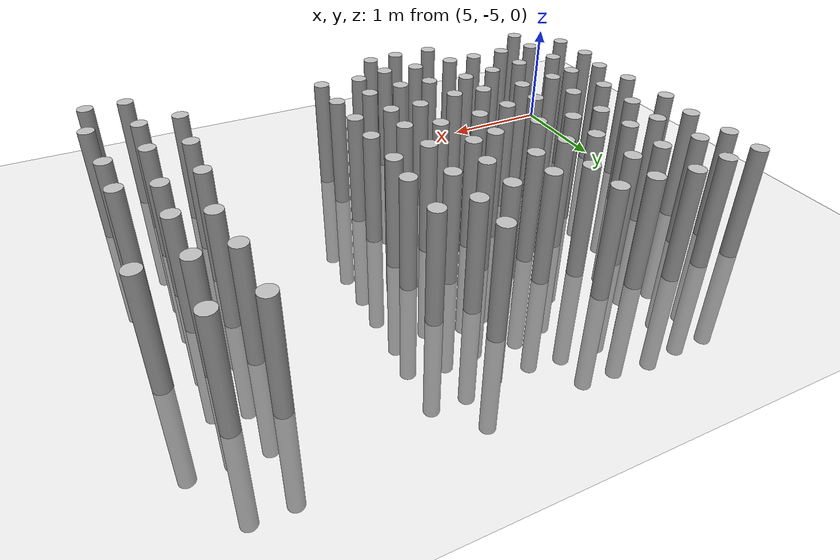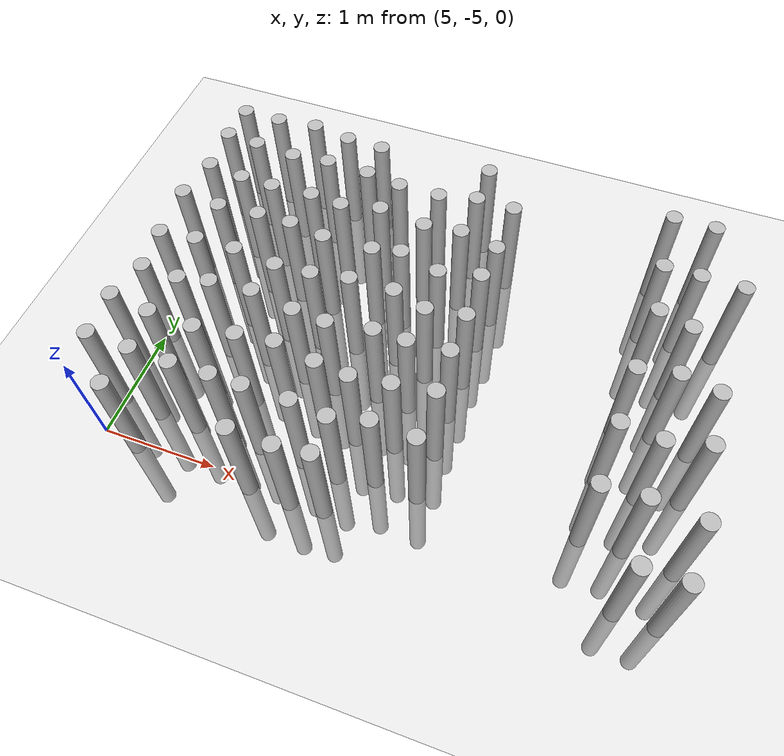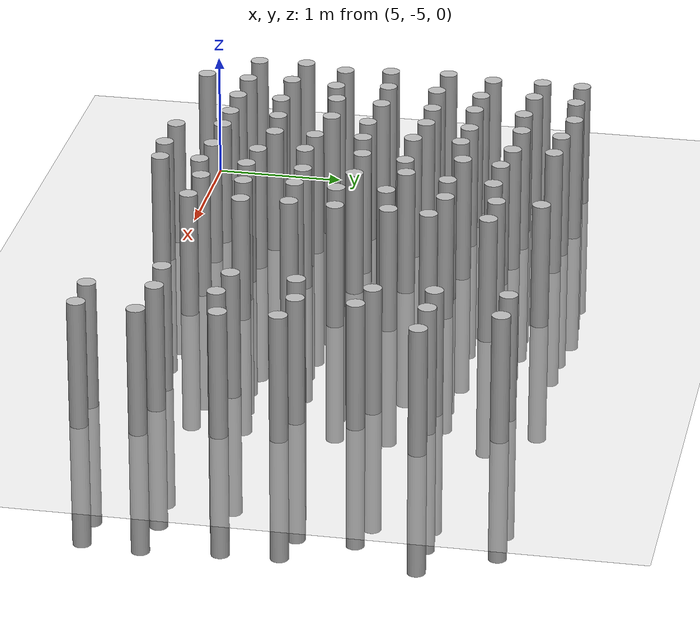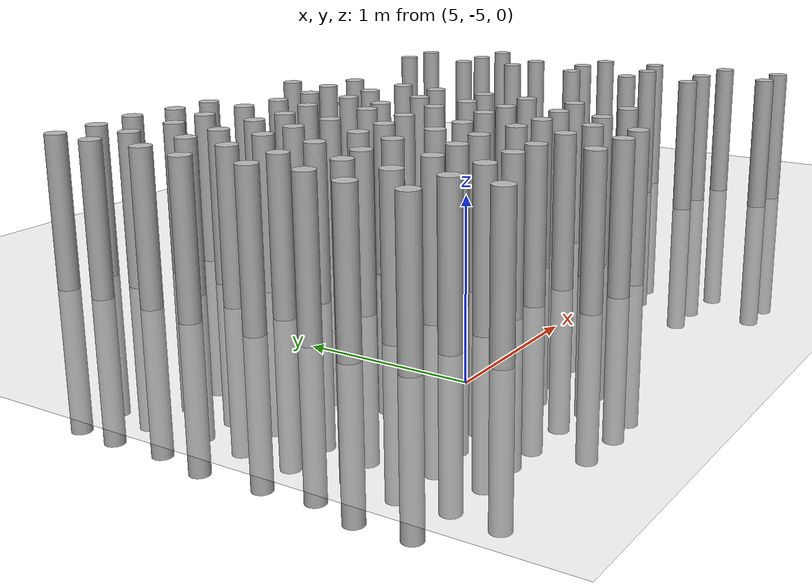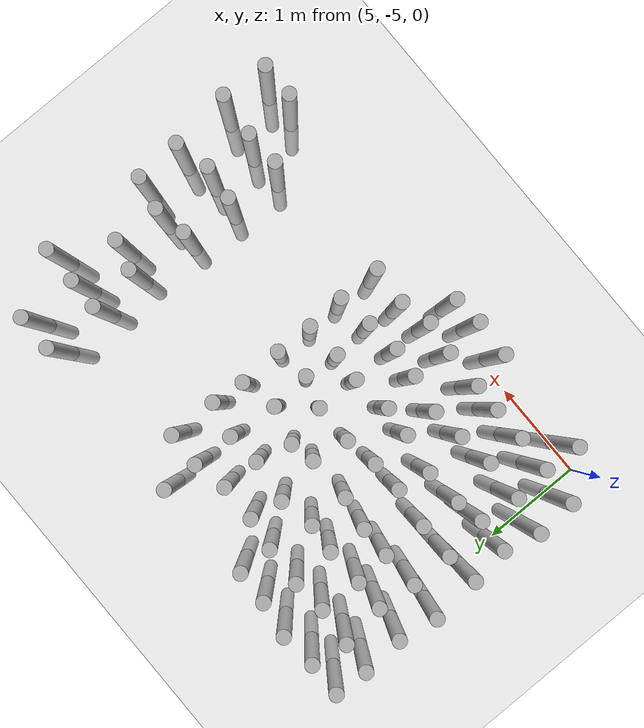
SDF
<sdf version="1.7">
 <world name="farmland_world">
  <model name="ground_plane">
   <static>1</static>
   <link name="link">
    <collision name="collision">
     <geometry><plane><normal>0 0 1</normal><size>40.0 40.0</size></plane></geometry>
     <surface><friction><ode><mu>100</mu><mu2>50</mu2></ode></friction></surface>
    </collision>
    <visual name="visual">
     <cast_shadows>0</cast_shadows>
     <geometry><plane><normal>0 0 1</normal><size>40.0 40.0</size></plane></geometry>
     <material>
      <script><uri>file://media/materials/scripts/gazebo.material</uri><name>Gazebo/Grey</name></script>
     </material>
    </visual>
   </link>
  </model>
  <model name="tree_3_0">
   <static>1</static>
   <link name="link">
    <collision name="collision">
     <geometry><cylinder><radius>0.07</radius><length>2.0</length></cylinder></geometry>
     <surface><friction><ode><mu>100</mu><mu2>50</mu2></ode></friction></surface>
    </collision>
    <visual name="visual">
     <geometry><cylinder><radius>0.07</radius><length>2.0</length></cylinder></geometry>
    </visual>
   </link>
   <pose>5.02385146459947 -2.01520380346252 0 0 0 0</pose>
  </model>
  <model name="tree_3_1">
   <static>1</static>
   <link name="link">
    <collision name="collision">
     <geometry><cylinder><radius>0.07</radius><length>2.0</length></cylinder></geometry>
     <surface><friction><ode><mu>100</mu><mu2>50</mu2></ode></friction></surface>
    </collision>
    <visual name="visual">
     <geometry><cylinder><radius>0.07</radius><length>2.0</length></cylinder></geometry>
    </visual>
   </link>
   <pose>5.006675148250511 -2.3384768606387527 0 0 0 0</pose>
  </model>
  <model name="tree_3_2">
   <static>1</static>
   <link name="link">
    <collision name="collision">
     <geometry><cylinder><radius>0.07</radius><length>2.0</length></cylinder></geometry>
     <surface><friction><ode><mu>100</mu><mu2>50</mu2></ode></friction></surface>
    </collision>
    <visual name="visual">
     <geometry><cylinder><radius>0.07</radius><length>2.0</length></cylinder></geometry>
    </visual>
   </link>
   <pose>5.028471975977635 -2.7375364424873183 0 0 0 0</pose>
  </model>
  <model name="tree_3_3">
   <static>1</static>
   <link name="link">
    <collision name="collision">
     <geometry><cylinder><radius>0.07</radius><length>2.0</length></cylinder></geometry>
     <surface><friction><ode><mu>100</mu><mu2>50</mu2></ode></friction></surface>
    </collision>
    <visual name="visual">
     <geometry><cylinder><radius>0.07</radius><length>2.0</length></cylinder></geometry>
    </visual>
   </link>
   <pose>4.964994302810389 -3.1116032813736223 0 0 0 0</pose>
  </model>
  <model name="tree_3_4">
   <static>1</static>
   <link name="link">
    <collision name="collision">
     <geometry><cylinder><radius>0.07</radius><length>2.0</length></cylinder></geometry>
     <surface><friction><ode><mu>100</mu><mu2>50</mu2></ode></friction></surface>
    </collision>
    <visual name="visual">
     <geometry><cylinder><radius>0.07</radius><length>2.0</length></cylinder></geometry>
    </visual>
   </link>
   <pose>4.9990074492786745 -3.5785740689551413 0 0 0 0</pose>
  </model>
  <model name="tree_3_5">
   <static>1</static>
   <link name="link">
    <collision name="collision">
     <geometry><cylinder><radius>0.07</radius><length>2.0</length></cylinder></geometry>
     <surface><friction><ode><mu>100</mu><mu2>50</mu2></ode></friction></surface>
    </collision>
    <visual name="visual">
     <geometry><cylinder><radius>0.07</radius><length>2.0</length></cylinder></geometry>
    </visual>
   </link>
   <pose>5.043069390708024 -3.945555380272648 0 0 0 0</pose>
  </model>
  <model name="tree_3_6">
   <static>1</static>
   <link name="link">
    <collision name="collision">
     <geometry><cylinder><radius>0.07</radius><length>2.0</length></cylinder></geometry>
     <surface><friction><ode><mu>100</mu><mu2>50</mu2></ode></friction></surface>
    </collision>
    <visual name="visual">
     <geometry><cylinder><radius>0.07</radius><length>2.0</length></cylinder></geometry>
    </visual>
   </link>
   <pose>4.9544429138274015 -4.286026819714782 0 0 0 0</pose>
  </model>
  <model name="tree_3_7">
   <static>1</static>
   <link name="link">
    <collision name="collision">
     <geometry><cylinder><radius>0.07</radius><length>2.0</length></cylinder></geometry>
     <surface><friction><ode><mu>100</mu><mu2>50</mu2></ode></friction></surface>
    </collision>
    <visual name="visual">
     <geometry><cylinder><radius>0.07</radius><length>2.0</length></cylinder></geometry>
    </visual>
   </link>
   <pose>4.9759379376444945 -4.670634595609621 0 0 0 0</pose>
  </model>
  <model name="tree_3_40">
   <static>1</static>
   <link name="link">
    <collision name="collision">
     <geometry><cylinder><radius>0.07</radius><length>2.0</length></cylinder></geometry>
     <surface><friction><ode><mu>100</mu><mu2>50</mu2></ode></friction></surface>
    </collision>
    <visual name="visual">
     <geometry><cylinder><radius>0.07</radius><length>2.0</length></cylinder></geometry>
    </visual>
   </link>
   <pose>5.355576322948958 -2.016524402360063 0 0 0 0</pose>
  </model>
  <model name="tree_3_41">
   <static>1</static>
   <link name="link">
    <collision name="collision">
     <geometry><cylinder><radius>0.07</radius><length>2.0</length></cylinder></geometry>
     <surface><friction><ode><mu>100</mu><mu2>50</mu2></ode></friction></surface>
    </collision>
    <visual name="visual">
     <geometry><cylinder><radius>0.07</radius><length>2.0</length></cylinder></geometry>
    </visual>
   </link>
   <pose>5.301224609624002 -2.361039287535652 0 0 0 0</pose>
  </model>
  <model name="tree_3_42">
   <static>1</static>
   <link name="link">
    <collision name="collision">
     <geometry><cylinder><radius>0.07</radius><length>2.0</length></cylinder></geometry>
     <surface><friction><ode><mu>100</mu><mu2>50</mu2></ode></friction></surface>
    </collision>
    <visual name="visual">
     <geometry><cylinder><radius>0.07</radius><length>2.0</length></cylinder></geometry>
    </visual>
   </link>
   <pose>5.3566181206462105 -2.7829888997864742 0 0 0 0</pose>
  </model>
  <model name="tree_3_43">
   <static>1</static>
   <link name="link">
    <collision name="collision">
     <geometry><cylinder><radius>0.07</radius><length>2.0</length></cylinder></geometry>
     <surface><friction><ode><mu>100</mu><mu2>50</mu2></ode></friction></surface>
    </collision>
    <visual name="visual">
     <geometry><cylinder><radius>0.07</radius><length>2.0</length></cylinder></geometry>
    </visual>
   </link>
   <pose>5.318500448142904 -3.148150946273446 0 0 0 0</pose>
  </model>
  <model name="tree_3_44">
   <static>1</static>
   <link name="link">
    <collision name="collision">
     <geometry><cylinder><radius>0.07</radius><length>2.0</length></cylinder></geometry>
     <surface><friction><ode><mu>100</mu><mu2>50</mu2></ode></friction></surface>
    </collision>
    <visual name="visual">
     <geometry><cylinder><radius>0.07</radius><length>2.0</length></cylinder></geometry>
    </visual>
   </link>
   <pose>5.31039272026135 -3.544649610499099 0 0 0 0</pose>
  </model>
  <model name="tree_3_45">
   <static>1</static>
   <link name="link">
    <collision name="collision">
     <geometry><cylinder><radius>0.07</radius><length>2.0</length></cylinder></geometry>
     <surface><friction><ode><mu>100</mu><mu2>50</mu2></ode></friction></surface>
    </collision>
    <visual name="visual">
     <geometry><cylinder><radius>0.07</radius><length>2.0</length></cylinder></geometry>
    </visual>
   </link>
   <pose>5.3680847334938315 -3.960110362016285 0 0 0 0</pose>
  </model>
  <model name="tree_3_46">
   <static>1</static>
   <link name="link">
    <collision name="collision">
     <geometry><cylinder><radius>0.07</radius><length>2.0</length></cylinder></geometry>
     <surface><friction><ode><mu>100</mu><mu2>50</mu2></ode></friction></surface>
    </collision>
    <visual name="visual">
     <geometry><cylinder><radius>0.07</radius><length>2.0</length></cylinder></geometry>
    </visual>
   </link>
   <pose>5.3151385449802095 -4.332776635560753 0 0 0 0</pose>
  </model>
  <model name="tree_3_47">
   <static>1</static>
   <link name="link">
    <collision name="collision">
     <geometry><cylinder><radius>0.07</radius><length>2.0</length></cylinder></geometry>
     <surface><friction><ode><mu>100</mu><mu2>50</mu2></ode></friction></surface>
    </collision>
    <visual name="visual">
     <geometry><cylinder><radius>0.07</radius><length>2.0</length></cylinder></geometry>
    </visual>
   </link>
   <pose>5.347528950631846 -4.686220482515934 0 0 0 0</pose>
  </model>
  <model name="tree_3_48">
   <static>1</static>
   <link name="link">
    <collision name="collision">
     <geometry><cylinder><radius>0.07</radius><length>2.0</length></cylinder></geometry>
     <surface><friction><ode><mu>100</mu><mu2>50</mu2></ode></friction></surface>
    </collision>
    <visual name="visual">
     <geometry><cylinder><radius>0.07</radius><length>2.0</length></cylinder></geometry>
    </visual>
   </link>
   <pose>5.318930916322283 -5.033075401153358 0 0 0 0</pose>
  </model>
  <model name="tree_3_80">
   <static>1</static>
   <link name="link">
    <collision name="collision">
     <geometry><cylinder><radius>0.07</radius><length>2.0</length></cylinder></geometry>
     <surface><friction><ode><mu>100</mu><mu2>50</mu2></ode></friction></surface>
    </collision>
    <visual name="visual">
     <geometry><cylinder><radius>0.07</radius><length>2.0</length></cylinder></geometry>
    </visual>
   </link>
   <pose>5.701997840113597 -1.9802903534746403 0 0 0 0</pose>
  </model>
  <model name="tree_3_81">
   <static>1</static>
   <link name="link">
    <collision name="collision">
     <geometry><cylinder><radius>0.07</radius><length>2.0</length></cylinder></geometry>
     <surface><friction><ode><mu>100</mu><mu2>50</mu2></ode></friction></surface>
    </collision>
    <visual name="visual">
     <geometry><cylinder><radius>0.07</radius><length>2.0</length></cylinder></geometry>
    </visual>
   </link>
   <pose>5.665114484475599 -2.389607710602619 0 0 0 0</pose>
  </model>
  <model name="tree_3_82">
   <static>1</static>
   <link name="link">
    <collision name="collision">
     <geometry><cylinder><radius>0.07</radius><length>2.0</length></cylinder></geometry>
     <surface><friction><ode><mu>100</mu><mu2>50</mu2></ode></friction></surface>
    </collision>
    <visual name="visual">
     <geometry><cylinder><radius>0.07</radius><length>2.0</length></cylinder></geometry>
    </visual>
   </link>
   <pose>5.646372974628185 -2.787722476743032 0 0 0 0</pose>
  </model>
  <model name="tree_3_83">
   <static>1</static>
   <link name="link">
    <collision name="collision">
     <geometry><cylinder><radius>0.07</radius><length>2.0</length></cylinder></geometry>
     <surface><friction><ode><mu>100</mu><mu2>50</mu2></ode></friction></surface>
    </collision>
    <visual name="visual">
     <geometry><cylinder><radius>0.07</radius><length>2.0</length></cylinder></geometry>
    </visual>
   </link>
   <pose>5.674965790184618 -3.123462483354185 0 0 0 0</pose>
  </model>
  <model name="tree_3_84">
   <static>1</static>
   <link name="link">
    <collision name="collision">
     <geometry><cylinder><radius>0.07</radius><length>2.0</length></cylinder></geometry>
     <surface><friction><ode><mu>100</mu><mu2>50</mu2></ode></friction></surface>
    </collision>
    <visual name="visual">
     <geometry><cylinder><radius>0.07</radius><length>2.0</length></cylinder></geometry>
    </visual>
   </link>
   <pose>5.659735320856876 -3.537080244143657 0 0 0 0</pose>
  </model>
  <model name="tree_3_85">
   <static>1</static>
   <link name="link">
    <collision name="collision">
     <geometry><cylinder><radius>0.07</radius><length>2.0</length></cylinder></geometry>
     <surface><friction><ode><mu>100</mu><mu2>50</mu2></ode></friction></surface>
    </collision>
    <visual name="visual">
     <geometry><cylinder><radius>0.07</radius><length>2.0</length></cylinder></geometry>
    </visual>
   </link>
   <pose>5.623744291111728 -3.906450281733641 0 0 0 0</pose>
  </model>
  <model name="tree_3_86">
   <static>1</static>
   <link name="link">
    <collision name="collision">
     <geometry><cylinder><radius>0.07</radius><length>2.0</length></cylinder></geometry>
     <surface><friction><ode><mu>100</mu><mu2>50</mu2></ode></friction></surface>
    </collision>
    <visual name="visual">
     <geometry><cylinder><radius>0.07</radius><length>2.0</length></cylinder></geometry>
    </visual>
   </link>
   <pose>5.708681006673218 -4.344476977118038 0 0 0 0</pose>
  </model>
  <model name="tree_3_87">
   <static>1</static>
   <link name="link">
    <collision name="collision">
     <geometry><cylinder><radius>0.07</radius><length>2.0</length></cylinder></geometry>
     <surface><friction><ode><mu>100</mu><mu2>50</mu2></ode></friction></surface>
    </collision>
    <visual name="visual">
     <geometry><cylinder><radius>0.07</radius><length>2.0</length></cylinder></geometry>
    </visual>
   </link>
   <pose>5.6966886249297195 -4.698110920966444 0 0 0 0</pose>
  </model>
  <model name="tree_3_120">
   <static>1</static>
   <link name="link">
    <collision name="collision">
     <geometry><cylinder><radius>0.07</radius><length>2.0</length></cylinder></geometry>
     <surface><friction><ode><mu>100</mu><mu2>50</mu2></ode></friction></surface>
    </collision>
    <visual name="visual">
     <geometry><cylinder><radius>0.07</radius><length>2.0</length></cylinder></geometry>
    </visual>
   </link>
   <pose>6.045070691149983 -2.0333672453946354 0 0 0 0</pose>
  </model>
  <model name="tree_3_121">
   <static>1</static>
   <link name="link">
    <collision name="collision">
     <geometry><cylinder><radius>0.07</radius><length>2.0</length></cylinder></geometry>
     <surface><friction><ode><mu>100</mu><mu2>50</mu2></ode></friction></surface>
    </collision>
    <visual name="visual">
     <geometry><cylinder><radius>0.07</radius><length>2.0</length></cylinder></geometry>
    </visual>
   </link>
   <pose>5.987241079746531 -2.357270842458127 0 0 0 0</pose>
  </model>
  <model name="tree_3_122">
   <static>1</static>
   <link name="link">
    <collision name="collision">
     <geometry><cylinder><radius>0.07</radius><length>2.0</length></cylinder></geometry>
     <surface><friction><ode><mu>100</mu><mu2>50</mu2></ode></friction></surface>
    </collision>
    <visual name="visual">
     <geometry><cylinder><radius>0.07</radius><length>2.0</length></cylinder></geometry>
    </visual>
   </link>
   <pose>6.008786983149441 -2.7689721786630486 0 0 0 0</pose>
  </model>
  <model name="tree_3_123">
   <static>1</static>
   <link name="link">
    <collision name="collision">
     <geometry><cylinder><radius>0.07</radius><length>2.0</length></cylinder></geometry>
     <surface><friction><ode><mu>100</mu><mu2>50</mu2></ode></friction></surface>
    </collision>
    <visual name="visual">
     <geometry><cylinder><radius>0.07</radius><length>2.0</length></cylinder></geometry>
    </visual>
   </link>
   <pose>5.972747882565129 -3.1216913439952765 0 0 0 0</pose>
  </model>
  <model name="tree_3_124">
   <static>1</static>
   <link name="link">
    <collision name="collision">
     <geometry><cylinder><radius>0.07</radius><length>2.0</length></cylinder></geometry>
     <surface><friction><ode><mu>100</mu><mu2>50</mu2></ode></friction></surface>
    </collision>
    <visual name="visual">
     <geometry><cylinder><radius>0.07</radius><length>2.0</length></cylinder></geometry>
    </visual>
   </link>
   <pose>6.042390331918183 -3.577089537702943 0 0 0 0</pose>
  </model>
  <model name="tree_3_125">
   <static>1</static>
   <link name="link">
    <collision name="collision">
     <geometry><cylinder><radius>0.07</radius><length>2.0</length></cylinder></geometry>
     <surface><friction><ode><mu>100</mu><mu2>50</mu2></ode></friction></surface>
    </collision>
    <visual name="visual">
     <geometry><cylinder><radius>0.07</radius><length>2.0</length></cylinder></geometry>
    </visual>
   </link>
   <pose>5.981591901448951 -3.880047646056103 0 0 0 0</pose>
  </model>
  <model name="tree_3_126">
   <static>1</static>
   <link name="link">
    <collision name="collision">
     <geometry><cylinder><radius>0.07</radius><length>2.0</length></cylinder></geometry>
     <surface><friction><ode><mu>100</mu><mu2>50</mu2></ode></friction></surface>
    </collision>
    <visual name="visual">
     <geometry><cylinder><radius>0.07</radius><length>2.0</length></cylinder></geometry>
    </visual>
   </link>
   <pose>6.0463783823793245 -4.299276246709502 0 0 0 0</pose>
  </model>
  <model name="tree_3_127">
   <static>1</static>
   <link name="link">
    <collision name="collision">
     <geometry><cylinder><radius>0.07</radius><length>2.0</length></cylinder></geometry>
     <surface><friction><ode><mu>100</mu><mu2>50</mu2></ode></friction></surface>
    </collision>
    <visual name="visual">
     <geometry><cylinder><radius>0.07</radius><length>2.0</length></cylinder></geometry>
    </visual>
   </link>
   <pose>6.02596282708933 -4.692080384524665 0 0 0 0</pose>
  </model>
  <model name="tree_3_160">
   <static>1</static>
   <link name="link">
    <collision name="collision">
     <geometry><cylinder><radius>0.07</radius><length>2.0</length></cylinder></geometry>
     <surface><friction><ode><mu>100</mu><mu2>50</mu2></ode></friction></surface>
    </collision>
    <visual name="visual">
     <geometry><cylinder><radius>0.07</radius><length>2.0</length></cylinder></geometry>
    </visual>
   </link>
   <pose>6.371253046539261 -2.0430081857523503 0 0 0 0</pose>
  </model>
  <model name="tree_3_161">
   <static>1</static>
   <link name="link">
    <collision name="collision">
     <geometry><cylinder><radius>0.07</radius><length>2.0</length></cylinder></geometry>
     <surface><friction><ode><mu>100</mu><mu2>50</mu2></ode></friction></surface>
    </collision>
    <visual name="visual">
     <geometry><cylinder><radius>0.07</radius><length>2.0</length></cylinder></geometry>
    </visual>
   </link>
   <pose>6.365877527168337 -2.370327894279972 0 0 0 0</pose>
  </model>
  <model name="tree_3_162">
   <static>1</static>
   <link name="link">
    <collision name="collision">
     <geometry><cylinder><radius>0.07</radius><length>2.0</length></cylinder></geometry>
     <surface><friction><ode><mu>100</mu><mu2>50</mu2></ode></friction></surface>
    </collision>
    <visual name="visual">
     <geometry><cylinder><radius>0.07</radius><length>2.0</length></cylinder></geometry>
    </visual>
   </link>
   <pose>6.289450675016844 -2.792011423941152 0 0 0 0</pose>
  </model>
  <model name="tree_3_163">
   <static>1</static>
   <link name="link">
    <collision name="collision">
     <geometry><cylinder><radius>0.07</radius><length>2.0</length></cylinder></geometry>
     <surface><friction><ode><mu>100</mu><mu2>50</mu2></ode></friction></surface>
    </collision>
    <visual name="visual">
     <geometry><cylinder><radius>0.07</radius><length>2.0</length></cylinder></geometry>
    </visual>
   </link>
   <pose>6.2890995950459105 -3.1709419770625273 0 0 0 0</pose>
  </model>
  <model name="tree_3_164">
   <static>1</static>
   <link name="link">
    <collision name="collision">
     <geometry><cylinder><radius>0.07</radius><length>2.0</length></cylinder></geometry>
     <surface><friction><ode><mu>100</mu><mu2>50</mu2></ode></friction></surface>
    </collision>
    <visual name="visual">
     <geometry><cylinder><radius>0.07</radius><length>2.0</length></cylinder></geometry>
    </visual>
   </link>
   <pose>6.347795338352055 -3.5605181118059757 0 0 0 0</pose>
  </model>
  <model name="tree_3_165">
   <static>1</static>
   <link name="link">
    <collision name="collision">
     <geometry><cylinder><radius>0.07</radius><length>2.0</length></cylinder></geometry>
     <surface><friction><ode><mu>100</mu><mu2>50</mu2></ode></friction></surface>
    </collision>
    <visual name="visual">
     <geometry><cylinder><radius>0.07</radius><length>2.0</length></cylinder></geometry>
    </visual>
   </link>
   <pose>6.363194131726727 -3.941213248594961 0 0 0 0</pose>
  </model>
  <model name="tree_3_166">
   <static>1</static>
   <link name="link">
    <collision name="collision">
     <geometry><cylinder><radius>0.07</radius><length>2.0</length></cylinder></geometry>
     <surface><friction><ode><mu>100</mu><mu2>50</mu2></ode></friction></surface>
    </collision>
    <visual name="visual">
     <geometry><cylinder><radius>0.07</radius><length>2.0</length></cylinder></geometry>
    </visual>
   </link>
   <pose>6.360645497657296 -4.263319149896035 0 0 0 0</pose>
  </model>
  <model name="tree_3_167">
   <static>1</static>
   <link name="link">
    <collision name="collision">
     <geometry><cylinder><radius>0.07</radius><length>2.0</length></cylinder></geometry>
     <surface><friction><ode><mu>100</mu><mu2>50</mu2></ode></friction></surface>
    </collision>
    <visual name="visual">
     <geometry><cylinder><radius>0.07</radius><length>2.0</length></cylinder></geometry>
    </visual>
   </link>
   <pose>6.295544510750751 -4.696796576337022 0 0 0 0</pose>
  </model>
  <model name="tree_3_168">
   <static>1</static>
   <link name="link">
    <collision name="collision">
     <geometry><cylinder><radius>0.07</radius><length>2.0</length></cylinder></geometry>
     <surface><friction><ode><mu>100</mu><mu2>50</mu2></ode></friction></surface>
    </collision>
    <visual name="visual">
     <geometry><cylinder><radius>0.07</radius><length>2.0</length></cylinder></geometry>
    </visual>
   </link>
   <pose>6.354739708756455 -5.057689062450076 0 0 0 0</pose>
  </model>
  <model name="tree_3_201">
   <static>1</static>
   <link name="link">
    <collision name="collision">
     <geometry><cylinder><radius>0.07</radius><length>2.0</length></cylinder></geometry>
     <surface><friction><ode><mu>100</mu><mu2>50</mu2></ode></friction></surface>
    </collision>
    <visual name="visual">
     <geometry><cylinder><radius>0.07</radius><length>2.0</length></cylinder></geometry>
    </visual>
   </link>
   <pose>6.678703909727084 -2.4147958627478787 0 0 0 0</pose>
  </model>
  <model name="tree_3_202">
   <static>1</static>
   <link name="link">
    <collision name="collision">
     <geometry><cylinder><radius>0.07</radius><length>2.0</length></cylinder></geometry>
     <surface><friction><ode><mu>100</mu><mu2>50</mu2></ode></friction></surface>
    </collision>
    <visual name="visual">
     <geometry><cylinder><radius>0.07</radius><length>2.0</length></cylinder></geometry>
    </visual>
   </link>
   <pose>6.623672664122933 -2.7204910860504503 0 0 0 0</pose>
  </model>
  <model name="tree_3_203">
   <static>1</static>
   <link name="link">
    <collision name="collision">
     <geometry><cylinder><radius>0.07</radius><length>2.0</length></cylinder></geometry>
     <surface><friction><ode><mu>100</mu><mu2>50</mu2></ode></friction></surface>
    </collision>
    <visual name="visual">
     <geometry><cylinder><radius>0.07</radius><length>2.0</length></cylinder></geometry>
    </visual>
   </link>
   <pose>6.718835989890341 -3.1587222388882963 0 0 0 0</pose>
  </model>
  <model name="tree_3_204">
   <static>1</static>
   <link name="link">
    <collision name="collision">
     <geometry><cylinder><radius>0.07</radius><length>2.0</length></cylinder></geometry>
     <surface><friction><ode><mu>100</mu><mu2>50</mu2></ode></friction></surface>
    </collision>
    <visual name="visual">
     <geometry><cylinder><radius>0.07</radius><length>2.0</length></cylinder></geometry>
    </visual>
   </link>
   <pose>6.6596505607395455 -3.506082702154009 0 0 0 0</pose>
  </model>
  <model name="tree_3_205">
   <static>1</static>
   <link name="link">
    <collision name="collision">
     <geometry><cylinder><radius>0.07</radius><length>2.0</length></cylinder></geometry>
     <surface><friction><ode><mu>100</mu><mu2>50</mu2></ode></friction></surface>
    </collision>
    <visual name="visual">
     <geometry><cylinder><radius>0.07</radius><length>2.0</length></cylinder></geometry>
    </visual>
   </link>
   <pose>6.649362992463491 -3.9642567747314135 0 0 0 0</pose>
  </model>
  <model name="tree_3_206">
   <static>1</static>
   <link name="link">
    <collision name="collision">
     <geometry><cylinder><radius>0.07</radius><length>2.0</length></cylinder></geometry>
     <surface><friction><ode><mu>100</mu><mu2>50</mu2></ode></friction></surface>
    </collision>
    <visual name="visual">
     <geometry><cylinder><radius>0.07</radius><length>2.0</length></cylinder></geometry>
    </visual>
   </link>
   <pose>6.718323503136048 -4.325280429846567 0 0 0 0</pose>
  </model>
  <model name="tree_3_207">
   <static>1</static>
   <link name="link">
    <collision name="collision">
     <geometry><cylinder><radius>0.07</radius><length>2.0</length></cylinder></geometry>
     <surface><friction><ode><mu>100</mu><mu2>50</mu2></ode></friction></surface>
    </collision>
    <visual name="visual">
     <geometry><cylinder><radius>0.07</radius><length>2.0</length></cylinder></geometry>
    </visual>
   </link>
   <pose>6.677508094566503 -4.695273877083204 0 0 0 0</pose>
  </model>
  <model name="tree_3_208">
   <static>1</static>
   <link name="link">
    <collision name="collision">
     <geometry><cylinder><radius>0.07</radius><length>2.0</length></cylinder></geometry>
     <surface><friction><ode><mu>100</mu><mu2>50</mu2></ode></friction></surface>
    </collision>
    <visual name="visual">
     <geometry><cylinder><radius>0.07</radius><length>2.0</length></cylinder></geometry>
    </visual>
   </link>
   <pose>6.718757956207695 -5.069769814990411 0 0 0 0</pose>
  </model>
  <model name="tree_3_241">
   <static>1</static>
   <link name="link">
    <collision name="collision">
     <geometry><cylinder><radius>0.07</radius><length>2.0</length></cylinder></geometry>
     <surface><friction><ode><mu>100</mu><mu2>50</mu2></ode></friction></surface>
    </collision>
    <visual name="visual">
     <geometry><cylinder><radius>0.07</radius><length>2.0</length></cylinder></geometry>
    </visual>
   </link>
   <pose>7.038006687966167 -2.4143582763199984 0 0 0 0</pose>
  </model>
  <model name="tree_3_242">
   <static>1</static>
   <link name="link">
    <collision name="collision">
     <geometry><cylinder><radius>0.07</radius><length>2.0</length></cylinder></geometry>
     <surface><friction><ode><mu>100</mu><mu2>50</mu2></ode></friction></surface>
    </collision>
    <visual name="visual">
     <geometry><cylinder><radius>0.07</radius><length>2.0</length></cylinder></geometry>
    </visual>
   </link>
   <pose>7.031954040984872 -2.771409211135581 0 0 0 0</pose>
  </model>
  <model name="tree_3_243">
   <static>1</static>
   <link name="link">
    <collision name="collision">
     <geometry><cylinder><radius>0.07</radius><length>2.0</length></cylinder></geometry>
     <surface><friction><ode><mu>100</mu><mu2>50</mu2></ode></friction></surface>
    </collision>
    <visual name="visual">
     <geometry><cylinder><radius>0.07</radius><length>2.0</length></cylinder></geometry>
    </visual>
   </link>
   <pose>6.9529598457820745 -3.10822112026703 0 0 0 0</pose>
  </model>
  <model name="tree_3_244">
   <static>1</static>
   <link name="link">
    <collision name="collision">
     <geometry><cylinder><radius>0.07</radius><length>2.0</length></cylinder></geometry>
     <surface><friction><ode><mu>100</mu><mu2>50</mu2></ode></friction></surface>
    </collision>
    <visual name="visual">
     <geometry><cylinder><radius>0.07</radius><length>2.0</length></cylinder></geometry>
    </visual>
   </link>
   <pose>7.038600511674897 -3.498811327092732 0 0 0 0</pose>
  </model>
  <model name="tree_3_245">
   <static>1</static>
   <link name="link">
    <collision name="collision">
     <geometry><cylinder><radius>0.07</radius><length>2.0</length></cylinder></geometry>
     <surface><friction><ode><mu>100</mu><mu2>50</mu2></ode></friction></surface>
    </collision>
    <visual name="visual">
     <geometry><cylinder><radius>0.07</radius><length>2.0</length></cylinder></geometry>
    </visual>
   </link>
   <pose>7.023395561934786 -3.907797909111365 0 0 0 0</pose>
  </model>
  <model name="tree_3_246">
   <static>1</static>
   <link name="link">
    <collision name="collision">
     <geometry><cylinder><radius>0.07</radius><length>2.0</length></cylinder></geometry>
     <surface><friction><ode><mu>100</mu><mu2>50</mu2></ode></friction></surface>
    </collision>
    <visual name="visual">
     <geometry><cylinder><radius>0.07</radius><length>2.0</length></cylinder></geometry>
    </visual>
   </link>
   <pose>7.0037901942262195 -4.356176772132347 0 0 0 0</pose>
  </model>
  <model name="tree_3_247">
   <static>1</static>
   <link name="link">
    <collision name="collision">
     <geometry><cylinder><radius>0.07</radius><length>2.0</length></cylinder></geometry>
     <surface><friction><ode><mu>100</mu><mu2>50</mu2></ode></friction></surface>
    </collision>
    <visual name="visual">
     <geometry><cylinder><radius>0.07</radius><length>2.0</length></cylinder></geometry>
    </visual>
   </link>
   <pose>6.992073362868622 -4.7303294096700945 0 0 0 0</pose>
  </model>
  <model name="tree_3_248">
   <static>1</static>
   <link name="link">
    <collision name="collision">
     <geometry><cylinder><radius>0.07</radius><length>2.0</length></cylinder></geometry>
     <surface><friction><ode><mu>100</mu><mu2>50</mu2></ode></friction></surface>
    </collision>
    <visual name="visual">
     <geometry><cylinder><radius>0.07</radius><length>2.0</length></cylinder></geometry>
    </visual>
   </link>
   <pose>7.002637928834273 -5.041210932203289 0 0 0 0</pose>
  </model>
  <model name="tree_3_280">
   <static>1</static>
   <link name="link">
    <collision name="collision">
     <geometry><cylinder><radius>0.07</radius><length>2.0</length></cylinder></geometry>
     <surface><friction><ode><mu>100</mu><mu2>50</mu2></ode></friction></surface>
    </collision>
    <visual name="visual">
     <geometry><cylinder><radius>0.07</radius><length>2.0</length></cylinder></geometry>
    </visual>
   </link>
   <pose>7.358797363416518 -1.993791352720527 0 0 0 0</pose>
  </model>
  <model name="tree_3_281">
   <static>1</static>
   <link name="link">
    <collision name="collision">
     <geometry><cylinder><radius>0.07</radius><length>2.0</length></cylinder></geometry>
     <surface><friction><ode><mu>100</mu><mu2>50</mu2></ode></friction></surface>
    </collision>
    <visual name="visual">
     <geometry><cylinder><radius>0.07</radius><length>2.0</length></cylinder></geometry>
    </visual>
   </link>
   <pose>7.357050005380609 -2.339602623985994 0 0 0 0</pose>
  </model>
  <model name="tree_3_282">
   <static>1</static>
   <link name="link">
    <collision name="collision">
     <geometry><cylinder><radius>0.07</radius><length>2.0</length></cylinder></geometry>
     <surface><friction><ode><mu>100</mu><mu2>50</mu2></ode></friction></surface>
    </collision>
    <visual name="visual">
     <geometry><cylinder><radius>0.07</radius><length>2.0</length></cylinder></geometry>
    </visual>
   </link>
   <pose>7.347166675364193 -2.737196889871811 0 0 0 0</pose>
  </model>
  <model name="tree_3_283">
   <static>1</static>
   <link name="link">
    <collision name="collision">
     <geometry><cylinder><radius>0.07</radius><length>2.0</length></cylinder></geometry>
     <surface><friction><ode><mu>100</mu><mu2>50</mu2></ode></friction></surface>
    </collision>
    <visual name="visual">
     <geometry><cylinder><radius>0.07</radius><length>2.0</length></cylinder></geometry>
    </visual>
   </link>
   <pose>7.303658365984982 -3.202609690075508 0 0 0 0</pose>
  </model>
  <model name="tree_3_284">
   <static>1</static>
   <link name="link">
    <collision name="collision">
     <geometry><cylinder><radius>0.07</radius><length>2.0</length></cylinder></geometry>
     <surface><friction><ode><mu>100</mu><mu2>50</mu2></ode></friction></surface>
    </collision>
    <visual name="visual">
     <geometry><cylinder><radius>0.07</radius><length>2.0</length></cylinder></geometry>
    </visual>
   </link>
   <pose>7.330014365975155 -3.585867607422321 0 0 0 0</pose>
  </model>
  <model name="tree_3_285">
   <static>1</static>
   <link name="link">
    <collision name="collision">
     <geometry><cylinder><radius>0.07</radius><length>2.0</length></cylinder></geometry>
     <surface><friction><ode><mu>100</mu><mu2>50</mu2></ode></friction></surface>
    </collision>
    <visual name="visual">
     <geometry><cylinder><radius>0.07</radius><length>2.0</length></cylinder></geometry>
    </visual>
   </link>
   <pose>7.298531241073502 -3.9184565507962437 0 0 0 0</pose>
  </model>
  <model name="tree_3_286">
   <static>1</static>
   <link name="link">
    <collision name="collision">
     <geometry><cylinder><radius>0.07</radius><length>2.0</length></cylinder></geometry>
     <surface><friction><ode><mu>100</mu><mu2>50</mu2></ode></friction></surface>
    </collision>
    <visual name="visual">
     <geometry><cylinder><radius>0.07</radius><length>2.0</length></cylinder></geometry>
    </visual>
   </link>
   <pose>7.327767850890975 -4.314171799423194 0 0 0 0</pose>
  </model>
  <model name="tree_3_287">
   <static>1</static>
   <link name="link">
    <collision name="collision">
     <geometry><cylinder><radius>0.07</radius><length>2.0</length></cylinder></geometry>
     <surface><friction><ode><mu>100</mu><mu2>50</mu2></ode></friction></surface>
    </collision>
    <visual name="visual">
     <geometry><cylinder><radius>0.07</radius><length>2.0</length></cylinder></geometry>
    </visual>
   </link>
   <pose>7.29117366117869 -4.654559993250933 0 0 0 0</pose>
  </model>
  <model name="tree_3_321">
   <static>1</static>
   <link name="link">
    <collision name="collision">
     <geometry><cylinder><radius>0.07</radius><length>2.0</length></cylinder></geometry>
     <surface><friction><ode><mu>100</mu><mu2>50</mu2></ode></friction></surface>
    </collision>
    <visual name="visual">
     <geometry><cylinder><radius>0.07</radius><length>2.0</length></cylinder></geometry>
    </visual>
   </link>
   <pose>7.684732050933077 -2.3487032315991585 0 0 0 0</pose>
  </model>
  <model name="tree_3_322">
   <static>1</static>
   <link name="link">
    <collision name="collision">
     <geometry><cylinder><radius>0.07</radius><length>2.0</length></cylinder></geometry>
     <surface><friction><ode><mu>100</mu><mu2>50</mu2></ode></friction></surface>
    </collision>
    <visual name="visual">
     <geometry><cylinder><radius>0.07</radius><length>2.0</length></cylinder></geometry>
    </visual>
   </link>
   <pose>7.676779685896272 -2.808175841066365 0 0 0 0</pose>
  </model>
  <model name="tree_3_323">
   <static>1</static>
   <link name="link">
    <collision name="collision">
     <geometry><cylinder><radius>0.07</radius><length>2.0</length></cylinder></geometry>
     <surface><friction><ode><mu>100</mu><mu2>50</mu2></ode></friction></surface>
    </collision>
    <visual name="visual">
     <geometry><cylinder><radius>0.07</radius><length>2.0</length></cylinder></geometry>
    </visual>
   </link>
   <pose>7.644573558831745 -3.1234824724015855 0 0 0 0</pose>
  </model>
  <model name="tree_3_324">
   <static>1</static>
   <link name="link">
    <collision name="collision">
     <geometry><cylinder><radius>0.07</radius><length>2.0</length></cylinder></geometry>
     <surface><friction><ode><mu>100</mu><mu2>50</mu2></ode></friction></surface>
    </collision>
    <visual name="visual">
     <geometry><cylinder><radius>0.07</radius><length>2.0</length></cylinder></geometry>
    </visual>
   </link>
   <pose>7.654551433887508 -3.5347212607353136 0 0 0 0</pose>
  </model>
  <model name="tree_3_325">
   <static>1</static>
   <link name="link">
    <collision name="collision">
     <geometry><cylinder><radius>0.07</radius><length>2.0</length></cylinder></geometry>
     <surface><friction><ode><mu>100</mu><mu2>50</mu2></ode></friction></surface>
    </collision>
    <visual name="visual">
     <geometry><cylinder><radius>0.07</radius><length>2.0</length></cylinder></geometry>
    </visual>
   </link>
   <pose>7.644360678088738 -3.8933485872130533 0 0 0 0</pose>
  </model>
  <model name="tree_3_326">
   <static>1</static>
   <link name="link">
    <collision name="collision">
     <geometry><cylinder><radius>0.07</radius><length>2.0</length></cylinder></geometry>
     <surface><friction><ode><mu>100</mu><mu2>50</mu2></ode></friction></surface>
    </collision>
    <visual name="visual">
     <geometry><cylinder><radius>0.07</radius><length>2.0</length></cylinder></geometry>
    </visual>
   </link>
   <pose>7.662250963645288 -4.265023205343119 0 0 0 0</pose>
  </model>
  <model name="tree_3_327">
   <static>1</static>
   <link name="link">
    <collision name="collision">
     <geometry><cylinder><radius>0.07</radius><length>2.0</length></cylinder></geometry>
     <surface><friction><ode><mu>100</mu><mu2>50</mu2></ode></friction></surface>
    </collision>
    <visual name="visual">
     <geometry><cylinder><radius>0.07</radius><length>2.0</length></cylinder></geometry>
    </visual>
   </link>
   <pose>7.656793555617777 -4.673926837476271 0 0 0 0</pose>
  </model>
  <model name="tree_3_360">
   <static>1</static>
   <link name="link">
    <collision name="collision">
     <geometry><cylinder><radius>0.07</radius><length>2.0</length></cylinder></geometry>
     <surface><friction><ode><mu>100</mu><mu2>50</mu2></ode></friction></surface>
    </collision>
    <visual name="visual">
     <geometry><cylinder><radius>0.07</radius><length>2.0</length></cylinder></geometry>
    </visual>
   </link>
   <pose>8.977873845568116 -1.9917509855184006 0 0 0 0</pose>
  </model>
  <model name="tree_3_361">
   <static>1</static>
   <link name="link">
    <collision name="collision">
     <geometry><cylinder><radius>0.07</radius><length>2.0</length></cylinder></geometry>
     <surface><friction><ode><mu>100</mu><mu2>50</mu2></ode></friction></surface>
    </collision>
    <visual name="visual">
     <geometry><cylinder><radius>0.07</radius><length>2.0</length></cylinder></geometry>
    </visual>
   </link>
   <pose>9.000452951848855 -2.5362251561126796 0 0 0 0</pose>
  </model>
  <model name="tree_3_362">
   <static>1</static>
   <link name="link">
    <collision name="collision">
     <geometry><cylinder><radius>0.07</radius><length>2.0</length></cylinder></geometry>
     <surface><friction><ode><mu>100</mu><mu2>50</mu2></ode></friction></surface>
    </collision>
    <visual name="visual">
     <geometry><cylinder><radius>0.07</radius><length>2.0</length></cylinder></geometry>
    </visual>
   </link>
   <pose>9.049521350259662 -2.9863854923780253 0 0 0 0</pose>
  </model>
  <model name="tree_3_363">
   <static>1</static>
   <link name="link">
    <collision name="collision">
     <geometry><cylinder><radius>0.07</radius><length>2.0</length></cylinder></geometry>
     <surface><friction><ode><mu>100</mu><mu2>50</mu2></ode></friction></surface>
    </collision>
    <visual name="visual">
     <geometry><cylinder><radius>0.07</radius><length>2.0</length></cylinder></geometry>
    </visual>
   </link>
   <pose>8.998139268712844 -3.566741684276433 0 0 0 0</pose>
  </model>
  <model name="tree_3_364">
   <static>1</static>
   <link name="link">
    <collision name="collision">
     <geometry><cylinder><radius>0.07</radius><length>2.0</length></cylinder></geometry>
     <surface><friction><ode><mu>100</mu><mu2>50</mu2></ode></friction></surface>
    </collision>
    <visual name="visual">
     <geometry><cylinder><radius>0.07</radius><length>2.0</length></cylinder></geometry>
    </visual>
   </link>
   <pose>8.979676041065272 -4.063972848007645 0 0 0 0</pose>
  </model>
  <model name="tree_3_365">
   <static>1</static>
   <link name="link">
    <collision name="collision">
     <geometry><cylinder><radius>0.07</radius><length>2.0</length></cylinder></geometry>
     <surface><friction><ode><mu>100</mu><mu2>50</mu2></ode></friction></surface>
    </collision>
    <visual name="visual">
     <geometry><cylinder><radius>0.07</radius><length>2.0</length></cylinder></geometry>
    </visual>
   </link>
   <pose>8.960891379069256 -4.585791409685601 0 0 0 0</pose>
  </model>
  <model name="tree_3_390">
   <static>1</static>
   <link name="link">
    <collision name="collision">
     <geometry><cylinder><radius>0.07</radius><length>2.0</length></cylinder></geometry>
     <surface><friction><ode><mu>100</mu><mu2>50</mu2></ode></friction></surface>
    </collision>
    <visual name="visual">
     <geometry><cylinder><radius>0.07</radius><length>2.0</length></cylinder></geometry>
    </visual>
   </link>
   <pose>9.329479139356575 -1.9903890557148574 0 0 0 0</pose>
  </model>
  <model name="tree_3_391">
   <static>1</static>
   <link name="link">
    <collision name="collision">
     <geometry><cylinder><radius>0.07</radius><length>2.0</length></cylinder></geometry>
     <surface><friction><ode><mu>100</mu><mu2>50</mu2></ode></friction></surface>
    </collision>
    <visual name="visual">
     <geometry><cylinder><radius>0.07</radius><length>2.0</length></cylinder></geometry>
    </visual>
   </link>
   <pose>9.299758110461587 -2.5374110608306695 0 0 0 0</pose>
  </model>
  <model name="tree_3_392">
   <static>1</static>
   <link name="link">
    <collision name="collision">
     <geometry><cylinder><radius>0.07</radius><length>2.0</length></cylinder></geometry>
     <surface><friction><ode><mu>100</mu><mu2>50</mu2></ode></friction></surface>
    </collision>
    <visual name="visual">
     <geometry><cylinder><radius>0.07</radius><length>2.0</length></cylinder></geometry>
    </visual>
   </link>
   <pose>9.32511147187306 -3.062001745792557 0 0 0 0</pose>
  </model>
  <model name="tree_3_393">
   <static>1</static>
   <link name="link">
    <collision name="collision">
     <geometry><cylinder><radius>0.07</radius><length>2.0</length></cylinder></geometry>
     <surface><friction><ode><mu>100</mu><mu2>50</mu2></ode></friction></surface>
    </collision>
    <visual name="visual">
     <geometry><cylinder><radius>0.07</radius><length>2.0</length></cylinder></geometry>
    </visual>
   </link>
   <pose>9.315655659295212 -3.5116136813291776 0 0 0 0</pose>
  </model>
  <model name="tree_3_394">
   <static>1</static>
   <link name="link">
    <collision name="collision">
     <geometry><cylinder><radius>0.07</radius><length>2.0</length></cylinder></geometry>
     <surface><friction><ode><mu>100</mu><mu2>50</mu2></ode></friction></surface>
    </collision>
    <visual name="visual">
     <geometry><cylinder><radius>0.07</radius><length>2.0</length></cylinder></geometry>
    </visual>
   </link>
   <pose>9.309114295109874 -4.099784728604708 0 0 0 0</pose>
  </model>
  <model name="tree_3_395">
   <static>1</static>
   <link name="link">
    <collision name="collision">
     <geometry><cylinder><radius>0.07</radius><length>2.0</length></cylinder></geometry>
     <surface><friction><ode><mu>100</mu><mu2>50</mu2></ode></friction></surface>
    </collision>
    <visual name="visual">
     <geometry><cylinder><radius>0.07</radius><length>2.0</length></cylinder></geometry>
    </visual>
   </link>
   <pose>9.300005351805462 -4.566491853075954 0 0 0 0</pose>
  </model>
  <model name="tree_3_396">
   <static>1</static>
   <link name="link">
    <collision name="collision">
     <geometry><cylinder><radius>0.07</radius><length>2.0</length></cylinder></geometry>
     <surface><friction><ode><mu>100</mu><mu2>50</mu2></ode></friction></surface>
    </collision>
    <visual name="visual">
     <geometry><cylinder><radius>0.07</radius><length>2.0</length></cylinder></geometry>
    </visual>
   </link>
   <pose>9.34130695768076 -5.0655866527252975 0 0 0 0</pose>
  </model>
  <model name="tree_3_421">
   <static>1</static>
   <link name="link">
    <collision name="collision">
     <geometry><cylinder><radius>0.07</radius><length>2.0</length></cylinder></geometry>
     <surface><friction><ode><mu>100</mu><mu2>50</mu2></ode></friction></surface>
    </collision>
    <visual name="visual">
     <geometry><cylinder><radius>0.07</radius><length>2.0</length></cylinder></geometry>
    </visual>
   </link>
   <pose>9.65120906486419 -2.5435292090115538 0 0 0 0</pose>
  </model>
  <model name="tree_3_423">
   <static>1</static>
   <link name="link">
    <collision name="collision">
     <geometry><cylinder><radius>0.07</radius><length>2.0</length></cylinder></geometry>
     <surface><friction><ode><mu>100</mu><mu2>50</mu2></ode></friction></surface>
    </collision>
    <visual name="visual">
     <geometry><cylinder><radius>0.07</radius><length>2.0</length></cylinder></geometry>
    </visual>
   </link>
   <pose>9.624510824369889 -3.575832697877945 0 0 0 0</pose>
  </model>
  <model name="tree_3_424">
   <static>1</static>
   <link name="link">
    <collision name="collision">
     <geometry><cylinder><radius>0.07</radius><length>2.0</length></cylinder></geometry>
     <surface><friction><ode><mu>100</mu><mu2>50</mu2></ode></friction></surface>
    </collision>
    <visual name="visual">
     <geometry><cylinder><radius>0.07</radius><length>2.0</length></cylinder></geometry>
    </visual>
   </link>
   <pose>9.64541839931206 -4.020125725701717 0 0 0 0</pose>
  </model>
  <model name="tree_3_425">
   <static>1</static>
   <link name="link">
    <collision name="collision">
     <geometry><cylinder><radius>0.07</radius><length>2.0</length></cylinder></geometry>
     <surface><friction><ode><mu>100</mu><mu2>50</mu2></ode></friction></surface>
    </collision>
    <visual name="visual">
     <geometry><cylinder><radius>0.07</radius><length>2.0</length></cylinder></geometry>
    </visual>
   </link>
   <pose>9.708638266825718 -4.611978138030871 0 0 0 0</pose>
  </model>
  <model name="tree_3_426">
   <static>1</static>
   <link name="link">
    <collision name="collision">
     <geometry><cylinder><radius>0.07</radius><length>2.0</length></cylinder></geometry>
     <surface><friction><ode><mu>100</mu><mu2>50</mu2></ode></friction></surface>
    </collision>
    <visual name="visual">
     <geometry><cylinder><radius>0.07</radius><length>2.0</length></cylinder></geometry>
    </visual>
   </link>
   <pose>9.673561051758927 -5.065886483550768 0 0 0 0</pose>
  </model>
 </world>
</sdf>
